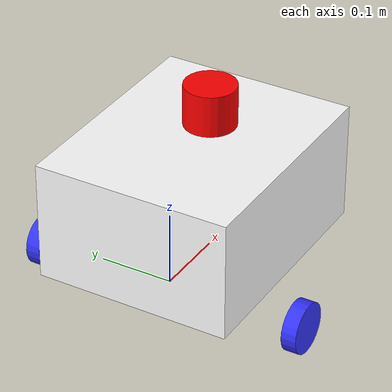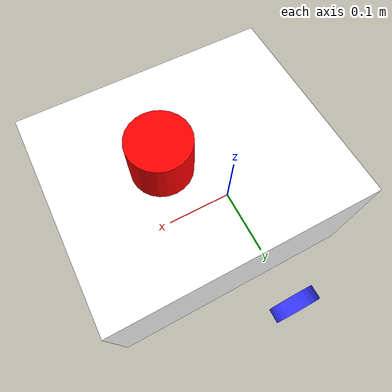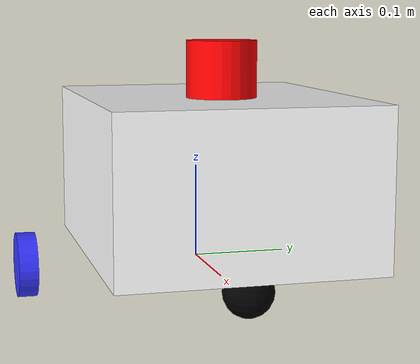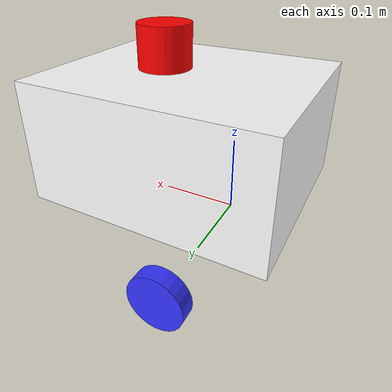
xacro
<?xml version="1.0"?>
<robot xmlns:xacro="http://www.ros.org/wiki/xacro"  name="robot">

    <xacro:include filename= "robot_core.xacro" />

    <xacro:include filename= "lidar.xacro" />

    <xacro:include filename= "imu.xacro" />

    <xacro:include filename= "mobilebot_ros2_control.xacro" />

</robot>

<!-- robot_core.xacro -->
<robot xmlns:xacro="http://www.ros.org/wiki/xacro"  name="robot">

    <xacro:include filename="inertial_macros.xacro"/>

    <material name = "white">
        <color rgba = "1 1 1 1"/>
    </material>
    <material name="orange">
        <color rgba = "1 0.3 0.1 1"/>
    </material>
    <material name = "blue">
        <color rgba = "0.2 0.2 1 1"/>
    </material>
    <material name ="black">
        <color rgba ="0 0 0 1"/>
    </material>
    <material name ="red">
        <color rgba ="1 0 0 1"/>
    </material>

    <!--BASE LINK -->

    <link name = "base_link">

    </link>

    <!--CHASSIS LINK -->

    <joint name = "chassis_joint" type = "fixed">
        <parent link = "base_link"/>
        <child link = "chassis"/>
        <origin xyz = "-0.095 0 0.008"/>
    </joint>

    <link name="chassis">
        <visual>
            <origin xyz="0.16 0 0.0935"/>
            <geometry>
                <box size ="0.32 0.265 0.161"/>
            </geometry>
            <material name ="white"/>
        </visual>
        <collision>
            <origin xyz="0.16 0 0.0935"/>
            <geometry>
                <box size ="0.32 0.265 0.161"/>
            </geometry>
        </collision>
        <xacro:inertial_box mass="1.5" x="0.32" y="0.265" z="0.161">
            <origin xyz="0.16 0 0.0935" rpy="0 0 0"/>
        </xacro:inertial_box>

    </link>
    <gazebo reference ="chassis">
        <material>Gazebo/White</material>
    </gazebo>

    <!-- LEFT WHEEL-->

    <joint name ="left_wheel_joint" type="continuous">
        <parent link = "base_link"/>
        <child link ="left_wheel"/>
        <origin xyz="0 0.187 0" rpy ="-${pi/2} 0 0"/>
        <axis xyz ="0 0 1"/>
    </joint>

    <link name ="left_wheel">
        <visual>
            <geometry>
                <cylinder radius="0.034" length ="0.02"/>
            </geometry>
            <material name="blue"/>
        </visual>
        <collision>
            <geometry>
                <cylinder radius="0.034" length ="0.02"/>
            </geometry>
        </collision>
        <xacro:inertial_cylinder mass="0.1" length="0.02" radius="0.034">
            <origin xyz="0 0 0" rpy="0 0 0"/>
        </xacro:inertial_cylinder>

    </link>
    <gazebo reference="left_wheel">
        <material>Gazebo/Blue</material>
    </gazebo>

    <!-- RIGHT WHEEL-->

    <joint name ="right_wheel_joint" type="continuous">
        <parent link = "base_link"/>
        <child link ="right_wheel"/>
        <origin xyz="0 -0.187 0" rpy ="${pi/2} 0 0"/>
        <axis xyz ="0 0 1"/>
    </joint>

    <link name ="right_wheel">
        <visual>
            <geometry>
                <cylinder radius="0.034" length ="0.02"/>
            </geometry>
            <material name="blue"/>
        </visual>
        <collision>
            <geometry>
                <cylinder radius="0.034" length ="0.02"/>
            </geometry>
        </collision>
        <xacro:inertial_cylinder mass="0.1" length="0.02" radius="0.034">
            <origin xyz="0 0 0" rpy="0 0 0"/>
        </xacro:inertial_cylinder>

    </link>
    <gazebo reference="right_wheel">
        <material>Gazebo/Blue</material>
    </gazebo>

    <!-- CASTER WHEEL JOINT-->

    <joint name="caster_wheel_joint" type="fixed">
        <parent link="chassis"/>
        <child link="caster_wheel"/>
        <origin xyz="0.29 0 0"/>
    </joint>

    <link name="caster_wheel">
        <visual>
            <geometry>
                <sphere radius="0.025"/>
            </geometry>
            <material name="black"/>
        </visual>
        <collision>
            <geometry>
                <sphere radius="0.025"/>
            </geometry>
        </collision>
        <xacro:inertial_sphere mass="0.1" radius="0.025">
            <origin xyz="0 0 0" rpy="0 0 0"/>
        </xacro:inertial_sphere>

    </link>

    <gazebo reference="caster_wheel">
        <material>Gazebo/Black</material>
        <mu1 value="0.0001"/>
        <mu2 value="0.0001"/>
    </gazebo>

</robot>

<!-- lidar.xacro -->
<robot xmlns:xacro="http://www.ros.org/wiki/xacro"  name="robot">

    <joint name="lidar_joint" type ="fixed">
        <parent link ="chassis"/>
        <child link ="laser_frame"/>
        <origin xyz="0.195 0 0.202" rpy="0 0 0"/>
    </joint>
    <link name="laser_frame">
        <visual>
            <geometry>
                <cylinder radius="0.035" length ="0.057"/>
            </geometry>
            <material name="red"/>
        </visual>
        <collision>
            <geometry>
                <cylinder radius="0.035" length ="0.057"/>
            </geometry>
        </collision>
        <xacro:inertial_cylinder mass="0.1" length="0.057" radius="0.035">
            <origin xyz="0 0 0" rpy="0 0 0"/>
        </xacro:inertial_cylinder>
    </link>

</robot>

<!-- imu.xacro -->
<robot xmlns:xacro="http://www.ros.org/wiki/xacro"  name="robot">

    <joint name="imu_joint" type ="fixed">
        <parent link ="chassis"/>
        <child link ="imu_link"/>
        <origin xyz="0.195 -0.03 0.17" rpy="0 0 0"/>
    </joint>

    <link name= "imu_link">
        <visual>
            <geometry>
                <box size ="0.0212 0.0164 0.0033"/>
            </geometry>
            <material name="red"/>
        </visual>
        <visual>
            <geometry>
                <box size ="0.0212 0.0164 0.0033"/>
            </geometry>
        </visual>
        <xacro:inertial_box mass="0.0021" x="0.0212" y="0.0164" z="0.0033">
            <origin xyz="0 0 0" rpy="0 0 0"/>
        </xacro:inertial_box>
    </link>

</robot>
